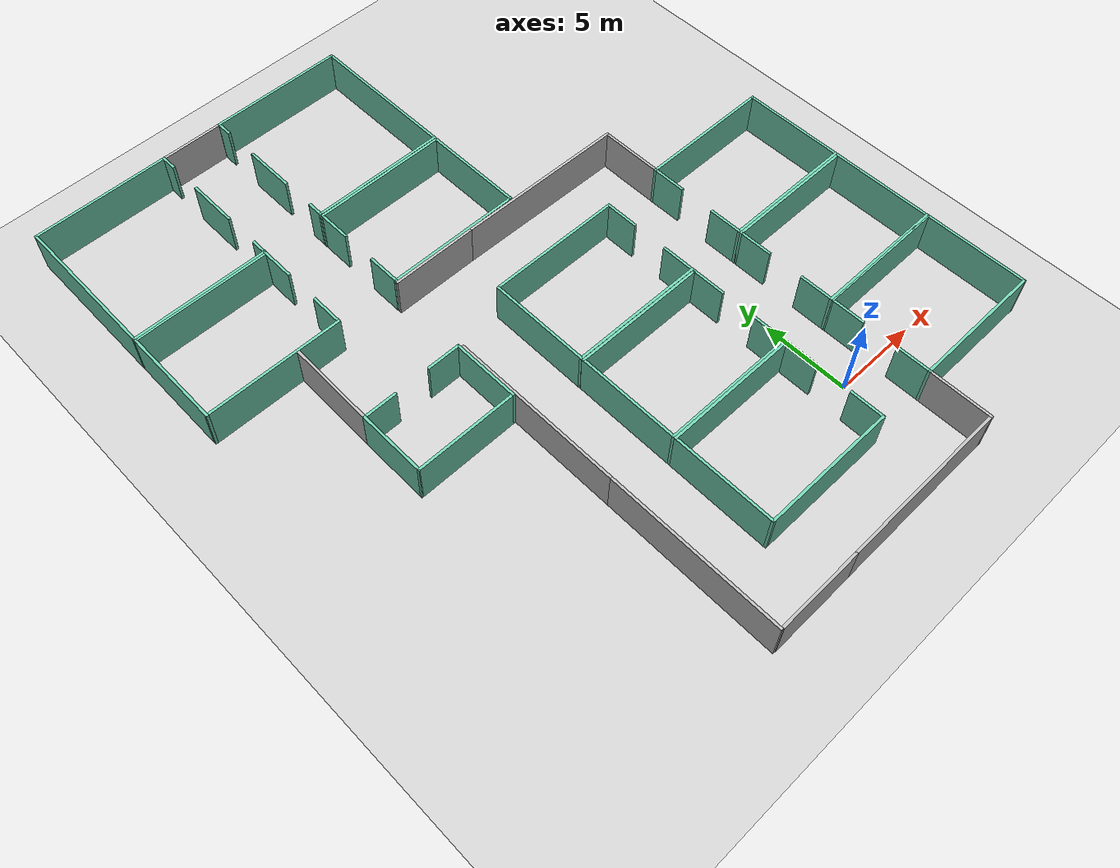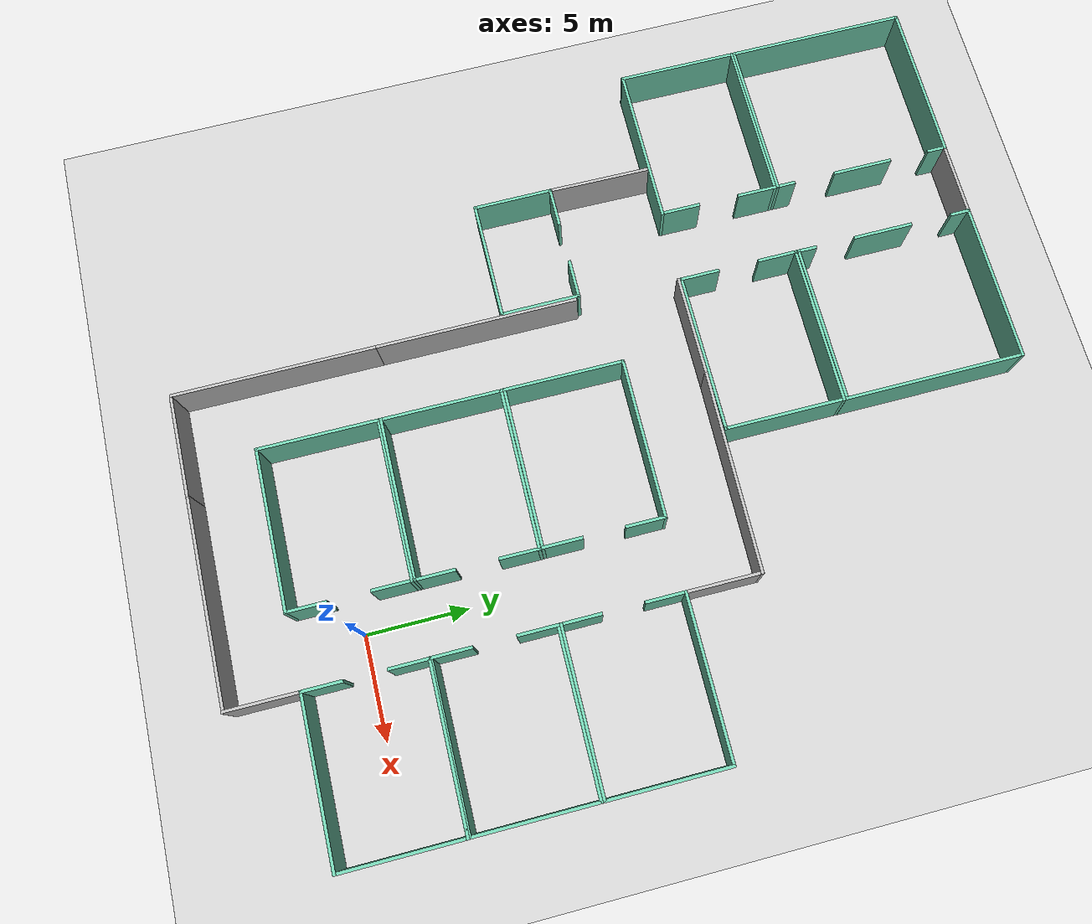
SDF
<sdf version="1.7">
 <world name="hospital_empty">
  <light name="sun" type="directional">
   <pose>0 0 10 0 -0 0</pose>
   <diffuse>0.8 0.8 0.8 1</diffuse>
   <specular>0.2 0.2 0.2 1</specular>
   <attenuation>
    <range>1000</range>
    <constant>0.9</constant>
    <linear>0.01</linear>
    <quadratic>0.001</quadratic>
   </attenuation>
   <direction>-0.5 0.1 -0.9</direction>
   <spot><inner_angle>0</inner_angle><outer_angle>0</outer_angle><falloff>0</falloff></spot>
  </light>
  <model name="ground_plane">
   <static>1</static>
   <link name="link">
    <collision name="collision">
     <geometry><plane><normal>0 0 1</normal><size>100 100</size></plane></geometry>
     <surface>
      <contact><collide_bitmask>65535</collide_bitmask></contact>
      <friction><ode><mu>100</mu><mu2>50</mu2></ode></friction>
     </surface>
    </collision>
    <visual name="visual">
     <cast_shadows>0</cast_shadows>
     <geometry><plane><normal>0 0 1</normal><size>100 100</size></plane></geometry>
     <material>
      <script><uri>file://media/materials/scripts/gazebo.material</uri><name>Gazebo/Grey</name></script>
     </material>
    </visual>
   </link>
  </model>
  <gravity>0 0 -9.8</gravity>
  <magnetic_field>6e-06 2.3e-05 -4.2e-05</magnetic_field>
  <atmosphere type="adiabatic"/>
  <physics type="ode">
   <max_step_size>0.001</max_step_size>
   <real_time_factor>1</real_time_factor>
   <real_time_update_rate>1000</real_time_update_rate>
  </physics>
  <scene><ambient>0.4 0.4 0.4 1</ambient><background>0.7 0.7 0.7 1</background><shadows>1</shadows></scene>
  <spherical_coordinates>
   <surface_model>EARTH_WGS84</surface_model>
   <latitude_deg>0</latitude_deg>
   <longitude_deg>0</longitude_deg>
   <elevation>0</elevation>
   <heading_deg>0</heading_deg>
  </spherical_coordinates>
  <model name="model.sdf">
   <pose>6.00187 0.008019 0 0 -0 0</pose>
   <link name="Wall_0">
    <collision name="Wall_0_Collision">
     <geometry><box><size>8 0.15 2.5</size></box></geometry>
     <pose>0 0 1.25 0 -0 0</pose>
    </collision>
    <visual name="Wall_0_Visual">
     <pose>0 0 1.25 0 -0 0</pose>
     <geometry><box><size>8 0.15 2.5</size></box></geometry>
     <material>
      <script><uri>file://media/materials/scripts/gazebo.material</uri><name>Gazebo/Grey</name></script>
      <ambient>0.435294 0.796078 0.67451 1</ambient>
     </material>
     <meta><layer>0</layer></meta>
    </visual>
    <pose>-0 -2.925 0 0 -0 0</pose>
   </link>
   <link name="Wall_2">
    <collision name="Wall_2_Collision">
     <geometry><box><size>6 0.15 2.5</size></box></geometry>
     <pose>0 0 1.25 0 -0 0</pose>
    </collision>
    <visual name="Wall_2_Visual">
     <pose>0 0 1.25 0 -0 0</pose>
     <geometry><box><size>6 0.15 2.5</size></box></geometry>
     <material>
      <script><uri>file://media/materials/scripts/gazebo.material</uri><name>Gazebo/Grey</name></script>
      <ambient>0.435294 0.796078 0.67451 1</ambient>
     </material>
     <meta><layer>0</layer></meta>
    </visual>
    <pose>3.925 0 0 0 -0 1.5708</pose>
   </link>
   <link name="Wall_5">
    <collision name="Wall_5_Collision">
     <geometry><box><size>8 0.15 2.5</size></box></geometry>
     <pose>0 0 1.25 0 -0 0</pose>
    </collision>
    <visual name="Wall_5_Visual">
     <pose>0 0 1.25 0 -0 0</pose>
     <geometry><box><size>8 0.15 2.5</size></box></geometry>
     <material>
      <script><uri>file://media/materials/scripts/gazebo.material</uri><name>Gazebo/Grey</name></script>
      <ambient>0.435294 0.796078 0.67451 1</ambient>
     </material>
     <meta><layer>0</layer></meta>
    </visual>
    <pose>-0 2.925 0 0 -0 3.14159</pose>
   </link>
   <link name="Wall_6">
    <collision name="Wall_6_Collision">
     <geometry><box><size>2 0.15 2.5</size></box></geometry>
     <pose>0 0 1.25 0 -0 0</pose>
    </collision>
    <visual name="Wall_6_Visual">
     <pose>0 0 1.25 0 -0 0</pose>
     <geometry><box><size>2 0.15 2.5</size></box></geometry>
     <material>
      <script><uri>file://media/materials/scripts/gazebo.material</uri><name>Gazebo/Grey</name></script>
      <ambient>0.435294 0.796078 0.67451 1</ambient>
     </material>
     <meta><layer>0</layer></meta>
    </visual>
    <pose>-3.925 2 0 0 -0 -1.5708</pose>
   </link>
   <link name="Wall_8">
    <collision name="Wall_8_Collision">
     <geometry><box><size>2 0.15 2.5</size></box></geometry>
     <pose>0 0 1.25 0 -0 0</pose>
    </collision>
    <visual name="Wall_8_Visual">
     <pose>0 0 1.25 0 -0 0</pose>
     <geometry><box><size>2 0.15 2.5</size></box></geometry>
     <material>
      <script><uri>file://media/materials/scripts/gazebo.material</uri><name>Gazebo/Grey</name></script>
      <ambient>0.435294 0.796078 0.67451 1</ambient>
     </material>
     <meta><layer>0</layer></meta>
    </visual>
    <pose>-3.925 -2 0 0 -0 1.5708</pose>
   </link>
   <static>1</static>
  </model>
  <model name="model.sdf_0">
   <pose>5.99464 5.93809 0 0 -0 0</pose>
   <link name="Wall_0">
    <collision name="Wall_0_Collision">
     <geometry><box><size>8 0.15 2.5</size></box></geometry>
     <pose>0 0 1.25 0 -0 0</pose>
    </collision>
    <visual name="Wall_0_Visual">
     <pose>0 0 1.25 0 -0 0</pose>
     <geometry><box><size>8 0.15 2.5</size></box></geometry>
     <material>
      <script><uri>file://media/materials/scripts/gazebo.material</uri><name>Gazebo/Grey</name></script>
      <ambient>0.435294 0.796078 0.67451 1</ambient>
     </material>
     <meta><layer>0</layer></meta>
    </visual>
    <pose>-0 -2.925 0 0 -0 0</pose>
   </link>
   <link name="Wall_2">
    <collision name="Wall_2_Collision">
     <geometry><box><size>6 0.15 2.5</size></box></geometry>
     <pose>0 0 1.25 0 -0 0</pose>
    </collision>
    <visual name="Wall_2_Visual">
     <pose>0 0 1.25 0 -0 0</pose>
     <geometry><box><size>6 0.15 2.5</size></box></geometry>
     <material>
      <script><uri>file://media/materials/scripts/gazebo.material</uri><name>Gazebo/Grey</name></script>
      <ambient>0.435294 0.796078 0.67451 1</ambient>
     </material>
     <meta><layer>0</layer></meta>
    </visual>
    <pose>3.925 0 0 0 -0 1.5708</pose>
   </link>
   <link name="Wall_5">
    <collision name="Wall_5_Collision">
     <geometry><box><size>8 0.15 2.5</size></box></geometry>
     <pose>0 0 1.25 0 -0 0</pose>
    </collision>
    <visual name="Wall_5_Visual">
     <pose>0 0 1.25 0 -0 0</pose>
     <geometry><box><size>8 0.15 2.5</size></box></geometry>
     <material>
      <script><uri>file://media/materials/scripts/gazebo.material</uri><name>Gazebo/Grey</name></script>
      <ambient>0.435294 0.796078 0.67451 1</ambient>
     </material>
     <meta><layer>0</layer></meta>
    </visual>
    <pose>-0 2.925 0 0 -0 3.14159</pose>
   </link>
   <link name="Wall_6">
    <collision name="Wall_6_Collision">
     <geometry><box><size>2 0.15 2.5</size></box></geometry>
     <pose>0 0 1.25 0 -0 0</pose>
    </collision>
    <visual name="Wall_6_Visual">
     <pose>0 0 1.25 0 -0 0</pose>
     <geometry><box><size>2 0.15 2.5</size></box></geometry>
     <material>
      <script><uri>file://media/materials/scripts/gazebo.material</uri><name>Gazebo/Grey</name></script>
      <ambient>0.435294 0.796078 0.67451 1</ambient>
     </material>
     <meta><layer>0</layer></meta>
    </visual>
    <pose>-3.925 2 0 0 -0 -1.5708</pose>
   </link>
   <link name="Wall_8">
    <collision name="Wall_8_Collision">
     <geometry><box><size>2 0.15 2.5</size></box></geometry>
     <pose>0 0 1.25 0 -0 0</pose>
    </collision>
    <visual name="Wall_8_Visual">
     <pose>0 0 1.25 0 -0 0</pose>
     <geometry><box><size>2 0.15 2.5</size></box></geometry>
     <material>
      <script><uri>file://media/materials/scripts/gazebo.material</uri><name>Gazebo/Grey</name></script>
      <ambient>0.435294 0.796078 0.67451 1</ambient>
     </material>
     <meta><layer>0</layer></meta>
    </visual>
    <pose>-3.925 -2 0 0 -0 1.5708</pose>
   </link>
   <static>1</static>
  </model>
  <model name="model.sdf_1">
   <pose>5.99492 11.9339 0 0 -0 0</pose>
   <link name="Wall_0">
    <collision name="Wall_0_Collision">
     <geometry><box><size>8 0.15 2.5</size></box></geometry>
     <pose>0 0 1.25 0 -0 0</pose>
    </collision>
    <visual name="Wall_0_Visual">
     <pose>0 0 1.25 0 -0 0</pose>
     <geometry><box><size>8 0.15 2.5</size></box></geometry>
     <material>
      <script><uri>file://media/materials/scripts/gazebo.material</uri><name>Gazebo/Grey</name></script>
      <ambient>0.435294 0.796078 0.67451 1</ambient>
     </material>
     <meta><layer>0</layer></meta>
    </visual>
    <pose>-0 -2.925 0 0 -0 0</pose>
   </link>
   <link name="Wall_2">
    <collision name="Wall_2_Collision">
     <geometry><box><size>6 0.15 2.5</size></box></geometry>
     <pose>0 0 1.25 0 -0 0</pose>
    </collision>
    <visual name="Wall_2_Visual">
     <pose>0 0 1.25 0 -0 0</pose>
     <geometry><box><size>6 0.15 2.5</size></box></geometry>
     <material>
      <script><uri>file://media/materials/scripts/gazebo.material</uri><name>Gazebo/Grey</name></script>
      <ambient>0.435294 0.796078 0.67451 1</ambient>
     </material>
     <meta><layer>0</layer></meta>
    </visual>
    <pose>3.925 0 0 0 -0 1.5708</pose>
   </link>
   <link name="Wall_5">
    <collision name="Wall_5_Collision">
     <geometry><box><size>8 0.15 2.5</size></box></geometry>
     <pose>0 0 1.25 0 -0 0</pose>
    </collision>
    <visual name="Wall_5_Visual">
     <pose>0 0 1.25 0 -0 0</pose>
     <geometry><box><size>8 0.15 2.5</size></box></geometry>
     <material>
      <script><uri>file://media/materials/scripts/gazebo.material</uri><name>Gazebo/Grey</name></script>
      <ambient>0.435294 0.796078 0.67451 1</ambient>
     </material>
     <meta><layer>0</layer></meta>
    </visual>
    <pose>-0 2.925 0 0 -0 3.14159</pose>
   </link>
   <link name="Wall_6">
    <collision name="Wall_6_Collision">
     <geometry><box><size>2 0.15 2.5</size></box></geometry>
     <pose>0 0 1.25 0 -0 0</pose>
    </collision>
    <visual name="Wall_6_Visual">
     <pose>0 0 1.25 0 -0 0</pose>
     <geometry><box><size>2 0.15 2.5</size></box></geometry>
     <material>
      <script><uri>file://media/materials/scripts/gazebo.material</uri><name>Gazebo/Grey</name></script>
      <ambient>0.435294 0.796078 0.67451 1</ambient>
     </material>
     <meta><layer>0</layer></meta>
    </visual>
    <pose>-3.925 2 0 0 -0 -1.5708</pose>
   </link>
   <link name="Wall_8">
    <collision name="Wall_8_Collision">
     <geometry><box><size>2 0.15 2.5</size></box></geometry>
     <pose>0 0 1.25 0 -0 0</pose>
    </collision>
    <visual name="Wall_8_Visual">
     <pose>0 0 1.25 0 -0 0</pose>
     <geometry><box><size>2 0.15 2.5</size></box></geometry>
     <material>
      <script><uri>file://media/materials/scripts/gazebo.material</uri><name>Gazebo/Grey</name></script>
      <ambient>0.435294 0.796078 0.67451 1</ambient>
     </material>
     <meta><layer>0</layer></meta>
    </visual>
    <pose>-3.925 -2 0 0 -0 1.5708</pose>
   </link>
   <static>1</static>
  </model>
  <model name="wall_3_5">
   <static>1</static>
   <link name="link">
    <pose>0 0 1.25 0 -0 0</pose>
    <collision name="collision">
     <geometry><box><size>3.5 0.15 2.5</size></box></geometry>
     <surface>
      <contact>
       <collide_without_contact>1</collide_without_contact>
       <collide_without_contact_bitmask>2</collide_without_contact_bitmask>
      </contact>
     </surface>
    </collision>
    <visual name="visual">
     <cast_shadows>0</cast_shadows>
     <geometry><box><size>3.5 0.15 2.5</size></box></geometry>
     <material>
      <script>
       <uri>model://cutout_wall/materials/scripts</uri>
       <uri>model://cutout_wall/materials/textures</uri>
       <name>drc_practice/cutout_wall</name>
      </script>
     </material>
    </visual>
    <sensor name="mud_contact" type="contact">
     <always_on>1</always_on>
     <update_rate>1000</update_rate>
     <contact><collision>collision</collision><topic>__default_topic__</topic></contact>
    </sensor>
   </link>
   <plugin name="gazebo_mud" filename="libMudPlugin.so">
    <contact_sensor_name>link/mud_contact</contact_sensor_name>
    <stiffness>0.0</stiffness>
    <damping>40.0</damping>
    <contact_surface_bitmask>2</contact_surface_bitmask>
    <link_name>drill::link</link_name>
   </plugin>
   <pose>2.07112 -4.73808 0 0 -0 1.56806</pose>
  </model>
  <model name="model.sdf_2">
   <pose>-5.47706 -0.01177 0 0 -0 3.13762</pose>
   <link name="Wall_0">
    <collision name="Wall_0_Collision">
     <geometry><box><size>8 0.15 2.5</size></box></geometry>
     <pose>0 0 1.25 0 -0 0</pose>
    </collision>
    <visual name="Wall_0_Visual">
     <pose>0 0 1.25 0 -0 0</pose>
     <geometry><box><size>8 0.15 2.5</size></box></geometry>
     <material>
      <script><uri>file://media/materials/scripts/gazebo.material</uri><name>Gazebo/Grey</name></script>
      <ambient>0.435294 0.796078 0.67451 1</ambient>
     </material>
     <meta><layer>0</layer></meta>
    </visual>
    <pose>-0 -2.925 0 0 -0 0</pose>
   </link>
   <link name="Wall_2">
    <collision name="Wall_2_Collision">
     <geometry><box><size>6 0.15 2.5</size></box></geometry>
     <pose>0 0 1.25 0 -0 0</pose>
    </collision>
    <visual name="Wall_2_Visual">
     <pose>0 0 1.25 0 -0 0</pose>
     <geometry><box><size>6 0.15 2.5</size></box></geometry>
     <material>
      <script><uri>file://media/materials/scripts/gazebo.material</uri><name>Gazebo/Grey</name></script>
      <ambient>0.435294 0.796078 0.67451 1</ambient>
     </material>
     <meta><layer>0</layer></meta>
    </visual>
    <pose>3.925 0 0 0 -0 1.5708</pose>
   </link>
   <link name="Wall_5">
    <collision name="Wall_5_Collision">
     <geometry><box><size>8 0.15 2.5</size></box></geometry>
     <pose>0 0 1.25 0 -0 0</pose>
    </collision>
    <visual name="Wall_5_Visual">
     <pose>0 0 1.25 0 -0 0</pose>
     <geometry><box><size>8 0.15 2.5</size></box></geometry>
     <material>
      <script><uri>file://media/materials/scripts/gazebo.material</uri><name>Gazebo/Grey</name></script>
      <ambient>0.435294 0.796078 0.67451 1</ambient>
     </material>
     <meta><layer>0</layer></meta>
    </visual>
    <pose>-0 2.925 0 0 -0 3.14159</pose>
   </link>
   <link name="Wall_6">
    <collision name="Wall_6_Collision">
     <geometry><box><size>2 0.15 2.5</size></box></geometry>
     <pose>0 0 1.25 0 -0 0</pose>
    </collision>
    <visual name="Wall_6_Visual">
     <pose>0 0 1.25 0 -0 0</pose>
     <geometry><box><size>2 0.15 2.5</size></box></geometry>
     <material>
      <script><uri>file://media/materials/scripts/gazebo.material</uri><name>Gazebo/Grey</name></script>
      <ambient>0.435294 0.796078 0.67451 1</ambient>
     </material>
     <meta><layer>0</layer></meta>
    </visual>
    <pose>-3.925 2 0 0 -0 -1.5708</pose>
   </link>
   <link name="Wall_8">
    <collision name="Wall_8_Collision">
     <geometry><box><size>2 0.15 2.5</size></box></geometry>
     <pose>0 0 1.25 0 -0 0</pose>
    </collision>
    <visual name="Wall_8_Visual">
     <pose>0 0 1.25 0 -0 0</pose>
     <geometry><box><size>2 0.15 2.5</size></box></geometry>
     <material>
      <script><uri>file://media/materials/scripts/gazebo.material</uri><name>Gazebo/Grey</name></script>
      <ambient>0.435294 0.796078 0.67451 1</ambient>
     </material>
     <meta><layer>0</layer></meta>
    </visual>
    <pose>-3.925 -2 0 0 -0 1.5708</pose>
   </link>
   <static>1</static>
  </model>
  <model name="model.sdf_2_clone">
   <pose>-5.4535 5.95884 0 0 -0 3.13762</pose>
   <link name="Wall_0">
    <collision name="Wall_0_Collision">
     <geometry><box><size>8 0.15 2.5</size></box></geometry>
     <pose>0 0 1.25 0 -0 0</pose>
    </collision>
    <visual name="Wall_0_Visual">
     <pose>0 0 1.25 0 -0 0</pose>
     <geometry><box><size>8 0.15 2.5</size></box></geometry>
     <material>
      <script><uri>file://media/materials/scripts/gazebo.material</uri><name>Gazebo/Grey</name></script>
      <ambient>0.435294 0.796078 0.67451 1</ambient>
     </material>
     <meta><layer>0</layer></meta>
    </visual>
    <pose>-0 -2.925 0 0 -0 0</pose>
   </link>
   <link name="Wall_2">
    <collision name="Wall_2_Collision">
     <geometry><box><size>6 0.15 2.5</size></box></geometry>
     <pose>0 0 1.25 0 -0 0</pose>
    </collision>
    <visual name="Wall_2_Visual">
     <pose>0 0 1.25 0 -0 0</pose>
     <geometry><box><size>6 0.15 2.5</size></box></geometry>
     <material>
      <script><uri>file://media/materials/scripts/gazebo.material</uri><name>Gazebo/Grey</name></script>
      <ambient>0.435294 0.796078 0.67451 1</ambient>
     </material>
     <meta><layer>0</layer></meta>
    </visual>
    <pose>3.925 0 0 0 -0 1.5708</pose>
   </link>
   <link name="Wall_5">
    <collision name="Wall_5_Collision">
     <geometry><box><size>8 0.15 2.5</size></box></geometry>
     <pose>0 0 1.25 0 -0 0</pose>
    </collision>
    <visual name="Wall_5_Visual">
     <pose>0 0 1.25 0 -0 0</pose>
     <geometry><box><size>8 0.15 2.5</size></box></geometry>
     <material>
      <script><uri>file://media/materials/scripts/gazebo.material</uri><name>Gazebo/Grey</name></script>
      <ambient>0.435294 0.796078 0.67451 1</ambient>
     </material>
     <meta><layer>0</layer></meta>
    </visual>
    <pose>-0 2.925 0 0 -0 3.14159</pose>
   </link>
   <link name="Wall_6">
    <collision name="Wall_6_Collision">
     <geometry><box><size>2 0.15 2.5</size></box></geometry>
     <pose>0 0 1.25 0 -0 0</pose>
    </collision>
    <visual name="Wall_6_Visual">
     <pose>0 0 1.25 0 -0 0</pose>
     <geometry><box><size>2 0.15 2.5</size></box></geometry>
     <material>
      <script><uri>file://media/materials/scripts/gazebo.material</uri><name>Gazebo/Grey</name></script>
      <ambient>0.435294 0.796078 0.67451 1</ambient>
     </material>
     <meta><layer>0</layer></meta>
    </visual>
    <pose>-3.925 2 0 0 -0 -1.5708</pose>
   </link>
   <link name="Wall_8">
    <collision name="Wall_8_Collision">
     <geometry><box><size>2 0.15 2.5</size></box></geometry>
     <pose>0 0 1.25 0 -0 0</pose>
    </collision>
    <visual name="Wall_8_Visual">
     <pose>0 0 1.25 0 -0 0</pose>
     <geometry><box><size>2 0.15 2.5</size></box></geometry>
     <material>
      <script><uri>file://media/materials/scripts/gazebo.material</uri><name>Gazebo/Grey</name></script>
      <ambient>0.435294 0.796078 0.67451 1</ambient>
     </material>
     <meta><layer>0</layer></meta>
    </visual>
    <pose>-3.925 -2 0 0 -0 1.5708</pose>
   </link>
   <static>1</static>
  </model>
  <model name="model.sdf_2_clone_clone">
   <pose>-5.44042 11.9649 0 0 -0 3.13762</pose>
   <link name="Wall_0">
    <collision name="Wall_0_Collision">
     <geometry><box><size>8 0.15 2.5</size></box></geometry>
     <pose>0 0 1.25 0 -0 0</pose>
    </collision>
    <visual name="Wall_0_Visual">
     <pose>0 0 1.25 0 -0 0</pose>
     <geometry><box><size>8 0.15 2.5</size></box></geometry>
     <material>
      <script><uri>file://media/materials/scripts/gazebo.material</uri><name>Gazebo/Grey</name></script>
      <ambient>0.435294 0.796078 0.67451 1</ambient>
     </material>
     <meta><layer>0</layer></meta>
    </visual>
    <pose>-0 -2.925 0 0 -0 0</pose>
   </link>
   <link name="Wall_2">
    <collision name="Wall_2_Collision">
     <geometry><box><size>6 0.15 2.5</size></box></geometry>
     <pose>0 0 1.25 0 -0 0</pose>
    </collision>
    <visual name="Wall_2_Visual">
     <pose>0 0 1.25 0 -0 0</pose>
     <geometry><box><size>6 0.15 2.5</size></box></geometry>
     <material>
      <script><uri>file://media/materials/scripts/gazebo.material</uri><name>Gazebo/Grey</name></script>
      <ambient>0.435294 0.796078 0.67451 1</ambient>
     </material>
     <meta><layer>0</layer></meta>
    </visual>
    <pose>3.925 0 0 0 -0 1.5708</pose>
   </link>
   <link name="Wall_5">
    <collision name="Wall_5_Collision">
     <geometry><box><size>8 0.15 2.5</size></box></geometry>
     <pose>0 0 1.25 0 -0 0</pose>
    </collision>
    <visual name="Wall_5_Visual">
     <pose>0 0 1.25 0 -0 0</pose>
     <geometry><box><size>8 0.15 2.5</size></box></geometry>
     <material>
      <script><uri>file://media/materials/scripts/gazebo.material</uri><name>Gazebo/Grey</name></script>
      <ambient>0.435294 0.796078 0.67451 1</ambient>
     </material>
     <meta><layer>0</layer></meta>
    </visual>
    <pose>-0 2.925 0 0 -0 3.14159</pose>
   </link>
   <link name="Wall_6">
    <collision name="Wall_6_Collision">
     <geometry><box><size>2 0.15 2.5</size></box></geometry>
     <pose>0 0 1.25 0 -0 0</pose>
    </collision>
    <visual name="Wall_6_Visual">
     <pose>0 0 1.25 0 -0 0</pose>
     <geometry><box><size>2 0.15 2.5</size></box></geometry>
     <material>
      <script><uri>file://media/materials/scripts/gazebo.material</uri><name>Gazebo/Grey</name></script>
      <ambient>0.435294 0.796078 0.67451 1</ambient>
     </material>
     <meta><layer>0</layer></meta>
    </visual>
    <pose>-3.925 2 0 0 -0 -1.5708</pose>
   </link>
   <link name="Wall_8">
    <collision name="Wall_8_Collision">
     <geometry><box><size>2 0.15 2.5</size></box></geometry>
     <pose>0 0 1.25 0 -0 0</pose>
    </collision>
    <visual name="Wall_8_Visual">
     <pose>0 0 1.25 0 -0 0</pose>
     <geometry><box><size>2 0.15 2.5</size></box></geometry>
     <material>
      <script><uri>file://media/materials/scripts/gazebo.material</uri><name>Gazebo/Grey</name></script>
      <ambient>0.435294 0.796078 0.67451 1</ambient>
     </material>
     <meta><layer>0</layer></meta>
    </visual>
    <pose>-3.925 -2 0 0 -0 1.5708</pose>
   </link>
   <static>1</static>
  </model>
  <model name="wall_10">
   <static>1</static>
   <link name="link">
    <pose>0 0 1.25 0 -0 0</pose>
    <collision name="collision">
     <geometry><box><size>10 0.15 2.5</size></box></geometry>
     <surface>
      <contact>
       <collide_without_contact>1</collide_without_contact>
       <collide_without_contact_bitmask>2</collide_without_contact_bitmask>
      </contact>
     </surface>
    </collision>
    <visual name="visual">
     <cast_shadows>0</cast_shadows>
     <geometry><box><size>10 0.15 2.5</size></box></geometry>
     <material>
      <script>
       <uri>model://cutout_wall/materials/scripts</uri>
       <uri>model://cutout_wall/materials/textures</uri>
       <name>drc_practice/cutout_wall</name>
      </script>
     </material>
    </visual>
    <sensor name="mud_contact" type="contact">
     <always_on>1</always_on>
     <update_rate>1000</update_rate>
     <contact><collision>collision</collision><topic>__default_topic__</topic></contact>
    </sensor>
   </link>
   <plugin name="gazebo_mud" filename="libMudPlugin.so">
    <contact_sensor_name>link/mud_contact</contact_sensor_name>
    <stiffness>0.0</stiffness>
    <damping>40.0</damping>
    <contact_surface_bitmask>2</contact_surface_bitmask>
    <link_name>drill::link</link_name>
   </plugin>
   <pose>-3.00199 -6.40567 0 0 -0 0</pose>
  </model>
  <model name="wall_10_0">
   <static>1</static>
   <link name="link">
    <pose>0 0 1.25 0 -0 0</pose>
    <collision name="collision">
     <geometry><box><size>10 0.15 2.5</size></box></geometry>
     <surface>
      <contact>
       <collide_without_contact>1</collide_without_contact>
       <collide_without_contact_bitmask>2</collide_without_contact_bitmask>
      </contact>
     </surface>
    </collision>
    <visual name="visual">
     <cast_shadows>0</cast_shadows>
     <geometry><box><size>10 0.15 2.5</size></box></geometry>
     <material>
      <script>
       <uri>model://cutout_wall/materials/scripts</uri>
       <uri>model://cutout_wall/materials/textures</uri>
       <name>drc_practice/cutout_wall</name>
      </script>
     </material>
    </visual>
    <sensor name="mud_contact" type="contact">
     <always_on>1</always_on>
     <update_rate>1000</update_rate>
     <contact><collision>collision</collision><topic>__default_topic__</topic></contact>
    </sensor>
   </link>
   <plugin name="gazebo_mud" filename="libMudPlugin.so">
    <contact_sensor_name>link/mud_contact</contact_sensor_name>
    <stiffness>0.0</stiffness>
    <damping>40.0</damping>
    <contact_surface_bitmask>2</contact_surface_bitmask>
    <link_name>drill::link</link_name>
   </plugin>
   <pose>-13.0332 -1.45494 0 0 0 -1.57214</pose>
  </model>
  <model name="wall_5">
   <static>1</static>
   <link name="link">
    <pose>0 0 1.25 0 -0 0</pose>
    <collision name="collision">
     <geometry><box><size>5 0.15 2.5</size></box></geometry>
     <surface>
      <contact>
       <collide_without_contact>1</collide_without_contact>
       <collide_without_contact_bitmask>2</collide_without_contact_bitmask>
      </contact>
     </surface>
    </collision>
    <visual name="visual">
     <cast_shadows>0</cast_shadows>
     <geometry><box><size>5 0.15 2.5</size></box></geometry>
     <material>
      <script>
       <uri>model://cutout_wall/materials/scripts</uri>
       <uri>model://cutout_wall/materials/textures</uri>
       <name>drc_practice/cutout_wall</name>
      </script>
     </material>
    </visual>
    <sensor name="mud_contact" type="contact">
     <always_on>1</always_on>
     <update_rate>1000</update_rate>
     <contact><collision>collision</collision><topic>__default_topic__</topic></contact>
    </sensor>
   </link>
   <plugin name="gazebo_mud" filename="libMudPlugin.so">
    <contact_sensor_name>link/mud_contact</contact_sensor_name>
    <stiffness>0.0</stiffness>
    <damping>40.0</damping>
    <contact_surface_bitmask>2</contact_surface_bitmask>
    <link_name>drill::link</link_name>
   </plugin>
   <pose>-10.4583 -6.41458 0 0 -0 0</pose>
  </model>
  <model name="wall_10_0_clone">
   <static>1</static>
   <link name="link">
    <pose>0 0 1.25 0 -0 0</pose>
    <collision name="collision">
     <geometry><box><size>10 0.15 2.5</size></box></geometry>
     <surface>
      <contact>
       <collide_without_contact>1</collide_without_contact>
       <collide_without_contact_bitmask>2</collide_without_contact_bitmask>
      </contact>
     </surface>
    </collision>
    <visual name="visual">
     <cast_shadows>0</cast_shadows>
     <geometry><box><size>10 0.15 2.5</size></box></geometry>
     <material>
      <script>
       <uri>model://cutout_wall/materials/scripts</uri>
       <uri>model://cutout_wall/materials/textures</uri>
       <name>drc_practice/cutout_wall</name>
      </script>
     </material>
    </visual>
    <sensor name="mud_contact" type="contact">
     <always_on>1</always_on>
     <update_rate>1000</update_rate>
     <contact><collision>collision</collision><topic>__default_topic__</topic></contact>
    </sensor>
   </link>
   <plugin name="gazebo_mud" filename="libMudPlugin.so">
    <contact_sensor_name>link/mud_contact</contact_sensor_name>
    <stiffness>0.0</stiffness>
    <damping>40.0</damping>
    <contact_surface_bitmask>2</contact_surface_bitmask>
    <link_name>drill::link</link_name>
   </plugin>
   <pose>-13.02 8.53758 0 0 0 -1.57214</pose>
  </model>
  <model name="wall_3_5_clone">
   <static>1</static>
   <link name="link">
    <pose>0 0 1.25 0 -0 0</pose>
    <collision name="collision">
     <geometry><box><size>3.5 0.15 2.5</size></box></geometry>
     <surface>
      <contact>
       <collide_without_contact>1</collide_without_contact>
       <collide_without_contact_bitmask>2</collide_without_contact_bitmask>
      </contact>
     </surface>
    </collision>
    <visual name="visual">
     <cast_shadows>0</cast_shadows>
     <geometry><box><size>3.5 0.15 2.5</size></box></geometry>
     <material>
      <script>
       <uri>model://cutout_wall/materials/scripts</uri>
       <uri>model://cutout_wall/materials/textures</uri>
       <name>drc_practice/cutout_wall</name>
      </script>
     </material>
    </visual>
    <sensor name="mud_contact" type="contact">
     <always_on>1</always_on>
     <update_rate>1000</update_rate>
     <contact><collision>collision</collision><topic>__default_topic__</topic></contact>
    </sensor>
   </link>
   <plugin name="gazebo_mud" filename="libMudPlugin.so">
    <contact_sensor_name>link/mud_contact</contact_sensor_name>
    <stiffness>0.0</stiffness>
    <damping>40.0</damping>
    <contact_surface_bitmask>2</contact_surface_bitmask>
    <link_name>drill::link</link_name>
   </plugin>
   <pose>2.08091 16.6634 0 0 -0 1.56806</pose>
  </model>
  <model name="wall_10_clone">
   <static>1</static>
   <link name="link">
    <pose>0 0 1.25 0 -0 0</pose>
    <collision name="collision">
     <geometry><box><size>10 0.15 2.5</size></box></geometry>
     <surface>
      <contact>
       <collide_without_contact>1</collide_without_contact>
       <collide_without_contact_bitmask>2</collide_without_contact_bitmask>
      </contact>
     </surface>
    </collision>
    <visual name="visual">
     <cast_shadows>0</cast_shadows>
     <geometry><box><size>10 0.15 2.5</size></box></geometry>
     <material>
      <script>
       <uri>model://cutout_wall/materials/scripts</uri>
       <uri>model://cutout_wall/materials/textures</uri>
       <name>drc_practice/cutout_wall</name>
      </script>
     </material>
    </visual>
    <sensor name="mud_contact" type="contact">
     <always_on>1</always_on>
     <update_rate>1000</update_rate>
     <contact><collision>collision</collision><topic>__default_topic__</topic></contact>
    </sensor>
   </link>
   <plugin name="gazebo_mud" filename="libMudPlugin.so">
    <contact_sensor_name>link/mud_contact</contact_sensor_name>
    <stiffness>0.0</stiffness>
    <damping>40.0</damping>
    <contact_surface_bitmask>2</contact_surface_bitmask>
    <link_name>drill::link</link_name>
   </plugin>
   <pose>-2.83918 18.5508 0 0 0 -0.014119</pose>
  </model>
  <model name="wall_5_clone">
   <static>1</static>
   <link name="link">
    <pose>0 0 1.25 0 -0 0</pose>
    <collision name="collision">
     <geometry><box><size>5 0.15 2.5</size></box></geometry>
     <surface>
      <contact>
       <collide_without_contact>1</collide_without_contact>
       <collide_without_contact_bitmask>2</collide_without_contact_bitmask>
      </contact>
     </surface>
    </collision>
    <visual name="visual">
     <cast_shadows>0</cast_shadows>
     <geometry><box><size>5 0.15 2.5</size></box></geometry>
     <material>
      <script>
       <uri>model://cutout_wall/materials/scripts</uri>
       <uri>model://cutout_wall/materials/textures</uri>
       <name>drc_practice/cutout_wall</name>
      </script>
     </material>
    </visual>
    <sensor name="mud_contact" type="contact">
     <always_on>1</always_on>
     <update_rate>1000</update_rate>
     <contact><collision>collision</collision><topic>__default_topic__</topic></contact>
    </sensor>
   </link>
   <plugin name="gazebo_mud" filename="libMudPlugin.so">
    <contact_sensor_name>link/mud_contact</contact_sensor_name>
    <stiffness>0.0</stiffness>
    <damping>40.0</damping>
    <contact_surface_bitmask>2</contact_surface_bitmask>
    <link_name>drill::link</link_name>
   </plugin>
   <pose>-10.3264 18.6222 0 0 -0 0</pose>
  </model>
  <model name="hospital_stroage_room">
   <pose>-16.0834 11.7449 0 0 -0 0</pose>
   <link name="Wall_0">
    <collision name="Wall_0_Collision">
     <geometry><box><size>6 0.15 2.5</size></box></geometry>
     <pose>0 0 1.25 0 -0 0</pose>
    </collision>
    <visual name="Wall_0_Visual">
     <pose>0 0 1.25 0 -0 0</pose>
     <geometry><box><size>6 0.15 2.5</size></box></geometry>
     <material>
      <script><uri>file://media/materials/scripts/gazebo.material</uri><name>Gazebo/Grey</name></script>
      <ambient>0.435294 0.796078 0.67451 1</ambient>
     </material>
     <meta><layer>0</layer></meta>
    </visual>
    <pose>-0 -1.925 0 0 -0 0</pose>
   </link>
   <link name="Wall_1">
    <collision name="Wall_1_Collision">
     <geometry><box><size>4 0.15 2.5</size></box></geometry>
     <pose>0 0 1.25 0 -0 0</pose>
    </collision>
    <visual name="Wall_1_Visual">
     <pose>0 0 1.25 0 -0 0</pose>
     <geometry><box><size>4 0.15 2.5</size></box></geometry>
     <material>
      <script><uri>file://media/materials/scripts/gazebo.material</uri><name>Gazebo/Grey</name></script>
      <ambient>0.435294 0.796078 0.67451 1</ambient>
     </material>
     <meta><layer>0</layer></meta>
    </visual>
    <pose>2.925 0 0 0 -0 1.5708</pose>
   </link>
   <link name="Wall_3">
    <collision name="Wall_3_Collision">
     <geometry><box><size>4 0.15 2.5</size></box></geometry>
     <pose>0 0 1.25 0 -0 0</pose>
    </collision>
    <visual name="Wall_3_Visual">
     <pose>0 0 1.25 0 -0 0</pose>
     <geometry><box><size>4 0.15 2.5</size></box></geometry>
     <material>
      <script><uri>file://media/materials/scripts/gazebo.material</uri><name>Gazebo/Grey</name></script>
      <ambient>0.435294 0.796078 0.67451 1</ambient>
     </material>
     <meta><layer>0</layer></meta>
    </visual>
    <pose>-2.925 0 0 0 -0 1.5708</pose>
   </link>
   <link name="Wall_4">
    <collision name="Wall_4_Collision">
     <geometry><box><size>2 0.15 2.5</size></box></geometry>
     <pose>0 0 1.25 0 -0 0</pose>
    </collision>
    <visual name="Wall_4_Visual">
     <pose>0 0 1.25 0 -0 0</pose>
     <geometry><box><size>2 0.15 2.5</size></box></geometry>
     <material>
      <script><uri>file://media/materials/scripts/gazebo.material</uri><name>Gazebo/Grey</name></script>
      <ambient>0.435294 0.796078 0.67451 1</ambient>
     </material>
     <meta><layer>0</layer></meta>
    </visual>
    <pose>-2 1.925 0 0 -0 0</pose>
   </link>
   <link name="Wall_6">
    <collision name="Wall_6_Collision">
     <geometry><box><size>2 0.15 2.5</size></box></geometry>
     <pose>0 0 1.25 0 -0 0</pose>
    </collision>
    <visual name="Wall_6_Visual">
     <pose>0 0 1.25 0 -0 0</pose>
     <geometry><box><size>2 0.15 2.5</size></box></geometry>
     <material>
      <script><uri>file://media/materials/scripts/gazebo.material</uri><name>Gazebo/Grey</name></script>
      <ambient>0.435294 0.796078 0.67451 1</ambient>
     </material>
     <meta><layer>0</layer></meta>
    </visual>
    <pose>2 1.925 0 0 -0 3.14159</pose>
   </link>
   <static>1</static>
  </model>
  <model name="model.sdf_clone">
   <pose>-8.82013 21.689 0 0 -0 0</pose>
   <link name="Wall_0">
    <collision name="Wall_0_Collision">
     <geometry><box><size>8 0.15 2.5</size></box></geometry>
     <pose>0 0 1.25 0 -0 0</pose>
    </collision>
    <visual name="Wall_0_Visual">
     <pose>0 0 1.25 0 -0 0</pose>
     <geometry><box><size>8 0.15 2.5</size></box></geometry>
     <material>
      <script><uri>file://media/materials/scripts/gazebo.material</uri><name>Gazebo/Grey</name></script>
      <ambient>0.435294 0.796078 0.67451 1</ambient>
     </material>
     <meta><layer>0</layer></meta>
    </visual>
    <pose>-0 -2.925 0 0 -0 0</pose>
   </link>
   <link name="Wall_2">
    <collision name="Wall_2_Collision">
     <geometry><box><size>6 0.15 2.5</size></box></geometry>
     <pose>0 0 1.25 0 -0 0</pose>
    </collision>
    <visual name="Wall_2_Visual">
     <pose>0 0 1.25 0 -0 0</pose>
     <geometry><box><size>6 0.15 2.5</size></box></geometry>
     <material>
      <script><uri>file://media/materials/scripts/gazebo.material</uri><name>Gazebo/Grey</name></script>
      <ambient>0.435294 0.796078 0.67451 1</ambient>
     </material>
     <meta><layer>0</layer></meta>
    </visual>
    <pose>3.925 0 0 0 -0 1.5708</pose>
   </link>
   <link name="Wall_5">
    <collision name="Wall_5_Collision">
     <geometry><box><size>8 0.15 2.5</size></box></geometry>
     <pose>0 0 1.25 0 -0 0</pose>
    </collision>
    <visual name="Wall_5_Visual">
     <pose>0 0 1.25 0 -0 0</pose>
     <geometry><box><size>8 0.15 2.5</size></box></geometry>
     <material>
      <script><uri>file://media/materials/scripts/gazebo.material</uri><name>Gazebo/Grey</name></script>
      <ambient>0.435294 0.796078 0.67451 1</ambient>
     </material>
     <meta><layer>0</layer></meta>
    </visual>
    <pose>-0 2.925 0 0 -0 3.14159</pose>
   </link>
   <link name="Wall_6">
    <collision name="Wall_6_Collision">
     <geometry><box><size>2 0.15 2.5</size></box></geometry>
     <pose>0 0 1.25 0 -0 0</pose>
    </collision>
    <visual name="Wall_6_Visual">
     <pose>0 0 1.25 0 -0 0</pose>
     <geometry><box><size>2 0.15 2.5</size></box></geometry>
     <material>
      <script><uri>file://media/materials/scripts/gazebo.material</uri><name>Gazebo/Grey</name></script>
      <ambient>0.435294 0.796078 0.67451 1</ambient>
     </material>
     <meta><layer>0</layer></meta>
    </visual>
    <pose>-3.925 2 0 0 -0 -1.5708</pose>
   </link>
   <link name="Wall_8">
    <collision name="Wall_8_Collision">
     <geometry><box><size>2 0.15 2.5</size></box></geometry>
     <pose>0 0 1.25 0 -0 0</pose>
    </collision>
    <visual name="Wall_8_Visual">
     <pose>0 0 1.25 0 -0 0</pose>
     <geometry><box><size>2 0.15 2.5</size></box></geometry>
     <material>
      <script><uri>file://media/materials/scripts/gazebo.material</uri><name>Gazebo/Grey</name></script>
      <ambient>0.435294 0.796078 0.67451 1</ambient>
     </material>
     <meta><layer>0</layer></meta>
    </visual>
    <pose>-3.925 -2 0 0 -0 1.5708</pose>
   </link>
   <static>1</static>
  </model>
  <model name="model.sdf_3">
   <pose>-8.81711 29.1965 0 0 -0 0</pose>
   <link name="Wall_0">
    <collision name="Wall_0_Collision">
     <geometry><box><size>8 0.15 2.5</size></box></geometry>
     <pose>0 0 1.25 0 -0 0</pose>
    </collision>
    <visual name="Wall_0_Visual">
     <pose>0 0 1.25 0 -0 0</pose>
     <geometry><box><size>8 0.15 2.5</size></box></geometry>
     <material>
      <script><uri>file://media/materials/scripts/gazebo.material</uri><name>Gazebo/Grey</name></script>
      <ambient>0.435294 0.796078 0.67451 1</ambient>
     </material>
     <meta><layer>0</layer></meta>
    </visual>
    <pose>0.00165 -4.425 0 0 -0 0</pose>
   </link>
   <link name="Wall_1">
    <collision name="Wall_1_Collision">
     <geometry><box><size>9 0.15 2.5</size></box></geometry>
     <pose>0 0 1.25 0 -0 0</pose>
    </collision>
    <visual name="Wall_1_Visual">
     <pose>0 0 1.25 0 -0 0</pose>
     <geometry><box><size>9 0.15 2.5</size></box></geometry>
     <material>
      <script><uri>file://media/materials/scripts/gazebo.material</uri><name>Gazebo/Grey</name></script>
      <ambient>0.435294 0.796078 0.67451 1</ambient>
     </material>
     <meta><layer>0</layer></meta>
    </visual>
    <pose>3.92665 0 0 0 -0 1.5708</pose>
   </link>
   <link name="Wall_3">
    <collision name="Wall_3_Collision">
     <geometry><box><size>8 0.15 2.5</size></box></geometry>
     <pose>0 0 1.25 0 -0 0</pose>
    </collision>
    <visual name="Wall_3_Visual">
     <pose>0 0 1.25 0 -0 0</pose>
     <geometry><box><size>8 0.15 2.5</size></box></geometry>
     <material>
      <script><uri>file://media/materials/scripts/gazebo.material</uri><name>Gazebo/Grey</name></script>
      <ambient>0.435294 0.796078 0.67451 1</ambient>
     </material>
     <meta><layer>0</layer></meta>
    </visual>
    <pose>0.00165 4.425 0 0 -0 3.14159</pose>
   </link>
   <link name="Wall_4">
    <collision name="Wall_4_Collision">
     <geometry><box><size>1 0.15 2.5</size></box></geometry>
     <pose>0 0 1.25 0 -0 0</pose>
    </collision>
    <visual name="Wall_4_Visual">
     <pose>0 0 1.25 0 -0 0</pose>
     <geometry><box><size>1 0.15 2.5</size></box></geometry>
     <material>
      <script><uri>file://media/materials/scripts/gazebo.material</uri><name>Gazebo/Grey</name></script>
      <ambient>0.435294 0.796078 0.67451 1</ambient>
     </material>
     <meta><layer>0</layer></meta>
    </visual>
    <pose>-3.92335 4 0 0 -0 -1.5708</pose>
   </link>
   <link name="Wall_6">
    <collision name="Wall_6_Collision">
     <geometry><box><size>1 0.15 2.5</size></box></geometry>
     <pose>0 0 1.25 0 -0 0</pose>
    </collision>
    <visual name="Wall_6_Visual">
     <pose>0 0 1.25 0 -0 0</pose>
     <geometry><box><size>1 0.15 2.5</size></box></geometry>
     <material>
      <script><uri>file://media/materials/scripts/gazebo.material</uri><name>Gazebo/Grey</name></script>
      <ambient>0.435294 0.796078 0.67451 1</ambient>
     </material>
     <meta><layer>0</layer></meta>
    </visual>
    <pose>-3.92335 -4 0 0 -0 1.5708</pose>
   </link>
   <link name="Wall_9">
    <collision name="Wall_9_Collision">
     <geometry><box><size>3 0.15 2.5</size></box></geometry>
     <pose>0 0 1.25 0 -0 0</pose>
    </collision>
    <visual name="Wall_9_Visual">
     <pose>0 0 1.25 0 -0 0</pose>
     <geometry><box><size>3 0.15 2.5</size></box></geometry>
     <material>
      <script><uri>file://media/materials/scripts/gazebo.material</uri><name>Gazebo/Grey</name></script>
      <ambient>0.435294 0.796078 0.67451 1</ambient>
     </material>
     <meta><layer>0</layer></meta>
    </visual>
    <pose>-3.92665 -0.04515 0 0 -0 1.5708</pose>
   </link>
   <static>1</static>
  </model>
  <model name="wall_3_5_0">
   <static>1</static>
   <link name="link">
    <pose>0 0 1.25 0 -0 0</pose>
    <collision name="collision">
     <geometry><box><size>3.5 0.15 2.5</size></box></geometry>
     <surface>
      <contact>
       <collide_without_contact>1</collide_without_contact>
       <collide_without_contact_bitmask>2</collide_without_contact_bitmask>
      </contact>
     </surface>
    </collision>
    <visual name="visual">
     <cast_shadows>0</cast_shadows>
     <geometry><box><size>3.5 0.15 2.5</size></box></geometry>
     <material>
      <script>
       <uri>model://cutout_wall/materials/scripts</uri>
       <uri>model://cutout_wall/materials/textures</uri>
       <name>drc_practice/cutout_wall</name>
      </script>
     </material>
    </visual>
    <sensor name="mud_contact" type="contact">
     <always_on>1</always_on>
     <update_rate>1000</update_rate>
     <contact><collision>collision</collision><topic>__default_topic__</topic></contact>
    </sensor>
   </link>
   <plugin name="gazebo_mud" filename="libMudPlugin.so">
    <contact_sensor_name>link/mud_contact</contact_sensor_name>
    <stiffness>0.0</stiffness>
    <damping>40.0</damping>
    <contact_surface_bitmask>2</contact_surface_bitmask>
    <link_name>drill::link</link_name>
   </plugin>
   <pose>-14.5756 33.6168 0 0 -0 0</pose>
  </model>
  <model name="model.sdf_2_clone_clone_0">
   <pose>-20.3146 21.7313 0 0 -0 3.13762</pose>
   <link name="Wall_0">
    <collision name="Wall_0_Collision">
     <geometry><box><size>8 0.15 2.5</size></box></geometry>
     <pose>0 0 1.25 0 -0 0</pose>
    </collision>
    <visual name="Wall_0_Visual">
     <pose>0 0 1.25 0 -0 0</pose>
     <geometry><box><size>8 0.15 2.5</size></box></geometry>
     <material>
      <script><uri>file://media/materials/scripts/gazebo.material</uri><name>Gazebo/Grey</name></script>
      <ambient>0.435294 0.796078 0.67451 1</ambient>
     </material>
     <meta><layer>0</layer></meta>
    </visual>
    <pose>-0 -2.925 0 0 -0 0</pose>
   </link>
   <link name="Wall_2">
    <collision name="Wall_2_Collision">
     <geometry><box><size>6 0.15 2.5</size></box></geometry>
     <pose>0 0 1.25 0 -0 0</pose>
    </collision>
    <visual name="Wall_2_Visual">
     <pose>0 0 1.25 0 -0 0</pose>
     <geometry><box><size>6 0.15 2.5</size></box></geometry>
     <material>
      <script><uri>file://media/materials/scripts/gazebo.material</uri><name>Gazebo/Grey</name></script>
      <ambient>0.435294 0.796078 0.67451 1</ambient>
     </material>
     <meta><layer>0</layer></meta>
    </visual>
    <pose>3.925 0 0 0 -0 1.5708</pose>
   </link>
   <link name="Wall_5">
    <collision name="Wall_5_Collision">
     <geometry><box><size>8 0.15 2.5</size></box></geometry>
     <pose>0 0 1.25 0 -0 0</pose>
    </collision>
    <visual name="Wall_5_Visual">
     <pose>0 0 1.25 0 -0 0</pose>
     <geometry><box><size>8 0.15 2.5</size></box></geometry>
     <material>
      <script><uri>file://media/materials/scripts/gazebo.material</uri><name>Gazebo/Grey</name></script>
      <ambient>0.435294 0.796078 0.67451 1</ambient>
     </material>
     <meta><layer>0</layer></meta>
    </visual>
    <pose>-0 2.925 0 0 -0 3.14159</pose>
   </link>
   <link name="Wall_6">
    <collision name="Wall_6_Collision">
     <geometry><box><size>2 0.15 2.5</size></box></geometry>
     <pose>0 0 1.25 0 -0 0</pose>
    </collision>
    <visual name="Wall_6_Visual">
     <pose>0 0 1.25 0 -0 0</pose>
     <geometry><box><size>2 0.15 2.5</size></box></geometry>
     <material>
      <script><uri>file://media/materials/scripts/gazebo.material</uri><name>Gazebo/Grey</name></script>
      <ambient>0.435294 0.796078 0.67451 1</ambient>
     </material>
     <meta><layer>0</layer></meta>
    </visual>
    <pose>-3.925 2 0 0 -0 -1.5708</pose>
   </link>
   <link name="Wall_8">
    <collision name="Wall_8_Collision">
     <geometry><box><size>2 0.15 2.5</size></box></geometry>
     <pose>0 0 1.25 0 -0 0</pose>
    </collision>
    <visual name="Wall_8_Visual">
     <pose>0 0 1.25 0 -0 0</pose>
     <geometry><box><size>2 0.15 2.5</size></box></geometry>
     <material>
      <script><uri>file://media/materials/scripts/gazebo.material</uri><name>Gazebo/Grey</name></script>
      <ambient>0.435294 0.796078 0.67451 1</ambient>
     </material>
     <meta><layer>0</layer></meta>
    </visual>
    <pose>-3.925 -2 0 0 -0 1.5708</pose>
   </link>
   <static>1</static>
  </model>
  <model name="model.sdf_3_clone">
   <pose>-20.2977 29.2115 0 0 -0 3.1401</pose>
   <link name="Wall_0">
    <collision name="Wall_0_Collision">
     <geometry><box><size>8 0.15 2.5</size></box></geometry>
     <pose>0 0 1.25 0 -0 0</pose>
    </collision>
    <visual name="Wall_0_Visual">
     <pose>0 0 1.25 0 -0 0</pose>
     <geometry><box><size>8 0.15 2.5</size></box></geometry>
     <material>
      <script><uri>file://media/materials/scripts/gazebo.material</uri><name>Gazebo/Grey</name></script>
      <ambient>0.435294 0.796078 0.67451 1</ambient>
     </material>
     <meta><layer>0</layer></meta>
    </visual>
    <pose>0.00165 -4.425 0 0 -0 0</pose>
   </link>
   <link name="Wall_1">
    <collision name="Wall_1_Collision">
     <geometry><box><size>9 0.15 2.5</size></box></geometry>
     <pose>0 0 1.25 0 -0 0</pose>
    </collision>
    <visual name="Wall_1_Visual">
     <pose>0 0 1.25 0 -0 0</pose>
     <geometry><box><size>9 0.15 2.5</size></box></geometry>
     <material>
      <script><uri>file://media/materials/scripts/gazebo.material</uri><name>Gazebo/Grey</name></script>
      <ambient>0.435294 0.796078 0.67451 1</ambient>
     </material>
     <meta><layer>0</layer></meta>
    </visual>
    <pose>3.92665 0 0 0 -0 1.5708</pose>
   </link>
   <link name="Wall_3">
    <collision name="Wall_3_Collision">
     <geometry><box><size>8 0.15 2.5</size></box></geometry>
     <pose>0 0 1.25 0 -0 0</pose>
    </collision>
    <visual name="Wall_3_Visual">
     <pose>0 0 1.25 0 -0 0</pose>
     <geometry><box><size>8 0.15 2.5</size></box></geometry>
     <material>
      <script><uri>file://media/materials/scripts/gazebo.material</uri><name>Gazebo/Grey</name></script>
      <ambient>0.435294 0.796078 0.67451 1</ambient>
     </material>
     <meta><layer>0</layer></meta>
    </visual>
    <pose>0.00165 4.425 0 0 -0 3.14159</pose>
   </link>
   <link name="Wall_4">
    <collision name="Wall_4_Collision">
     <geometry><box><size>1 0.15 2.5</size></box></geometry>
     <pose>0 0 1.25 0 -0 0</pose>
    </collision>
    <visual name="Wall_4_Visual">
     <pose>0 0 1.25 0 -0 0</pose>
     <geometry><box><size>1 0.15 2.5</size></box></geometry>
     <material>
      <script><uri>file://media/materials/scripts/gazebo.material</uri><name>Gazebo/Grey</name></script>
      <ambient>0.435294 0.796078 0.67451 1</ambient>
     </material>
     <meta><layer>0</layer></meta>
    </visual>
    <pose>-3.92335 4 0 0 -0 -1.5708</pose>
   </link>
   <link name="Wall_6">
    <collision name="Wall_6_Collision">
     <geometry><box><size>1 0.15 2.5</size></box></geometry>
     <pose>0 0 1.25 0 -0 0</pose>
    </collision>
    <visual name="Wall_6_Visual">
     <pose>0 0 1.25 0 -0 0</pose>
     <geometry><box><size>1 0.15 2.5</size></box></geometry>
     <material>
      <script><uri>file://media/materials/scripts/gazebo.material</uri><name>Gazebo/Grey</name></script>
      <ambient>0.435294 0.796078 0.67451 1</ambient>
     </material>
     <meta><layer>0</layer></meta>
    </visual>
    <pose>-3.92335 -4 0 0 -0 1.5708</pose>
   </link>
   <link name="Wall_9">
    <collision name="Wall_9_Collision">
     <geometry><box><size>3 0.15 2.5</size></box></geometry>
     <pose>0 0 1.25 0 -0 0</pose>
    </collision>
    <visual name="Wall_9_Visual">
     <pose>0 0 1.25 0 -0 0</pose>
     <geometry><box><size>3 0.15 2.5</size></box></geometry>
     <material>
      <script><uri>file://media/materials/scripts/gazebo.material</uri><name>Gazebo/Grey</name></script>
      <ambient>0.435294 0.796078 0.67451 1</ambient>
     </material>
     <meta><layer>0</layer></meta>
    </visual>
    <pose>-3.92665 -0.04515 0 0 -0 1.5708</pose>
   </link>
   <static>1</static>
  </model>
  <model name="wall_5_clone_0">
   <static>1</static>
   <link name="link">
    <pose>0 0 1.25 0 -0 0</pose>
    <collision name="collision">
     <geometry><box><size>5 0.15 2.5</size></box></geometry>
     <surface>
      <contact>
       <collide_without_contact>1</collide_without_contact>
       <collide_without_contact_bitmask>2</collide_without_contact_bitmask>
      </contact>
     </surface>
    </collision>
    <visual name="visual">
     <cast_shadows>0</cast_shadows>
     <geometry><box><size>5 0.15 2.5</size></box></geometry>
     <material>
      <script>
       <uri>model://cutout_wall/materials/scripts</uri>
       <uri>model://cutout_wall/materials/textures</uri>
       <name>drc_practice/cutout_wall</name>
      </script>
     </material>
    </visual>
    <sensor name="mud_contact" type="contact">
     <always_on>1</always_on>
     <update_rate>1000</update_rate>
     <contact><collision>collision</collision><topic>__default_topic__</topic></contact>
    </sensor>
   </link>
   <plugin name="gazebo_mud" filename="libMudPlugin.so">
    <contact_sensor_name>link/mud_contact</contact_sensor_name>
    <stiffness>0.0</stiffness>
    <damping>40.0</damping>
    <contact_surface_bitmask>2</contact_surface_bitmask>
    <link_name>drill::link</link_name>
   </plugin>
   <pose>-18.9741 16.2419 0 0 -0 1.55886</pose>
  </model>
 </world>
</sdf>
